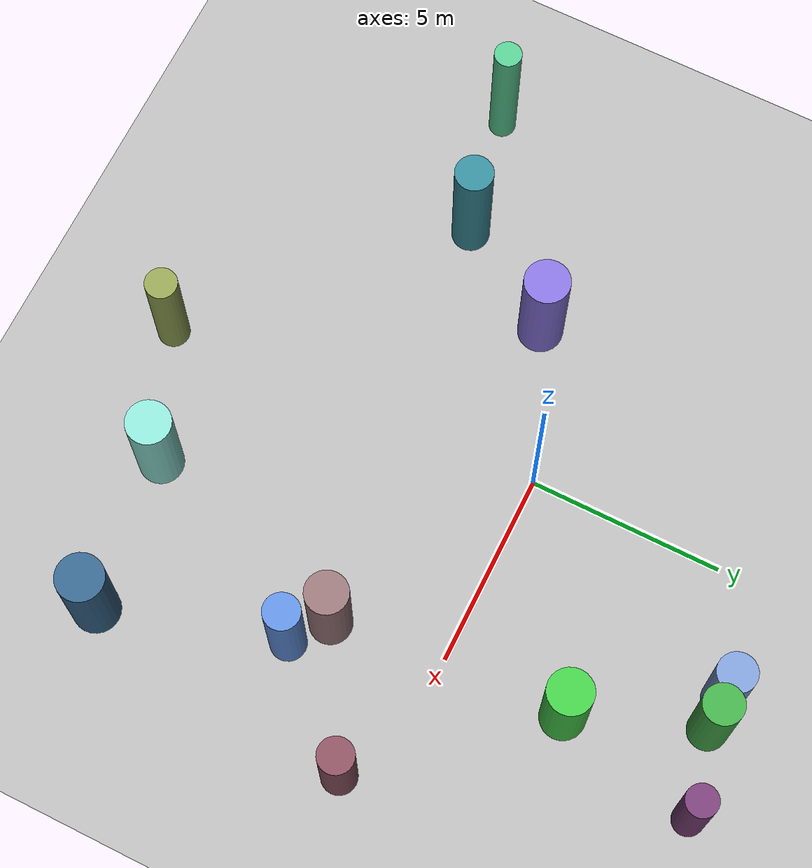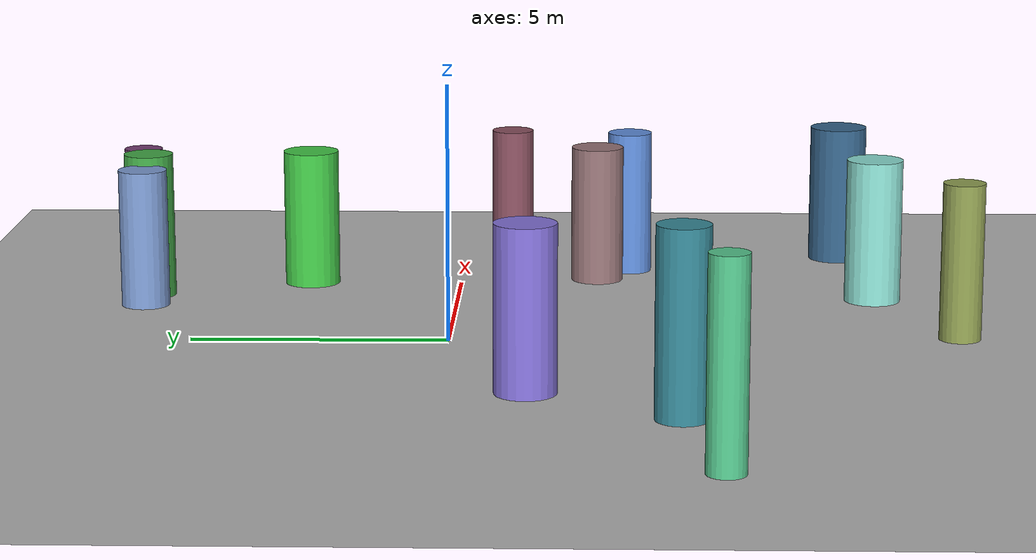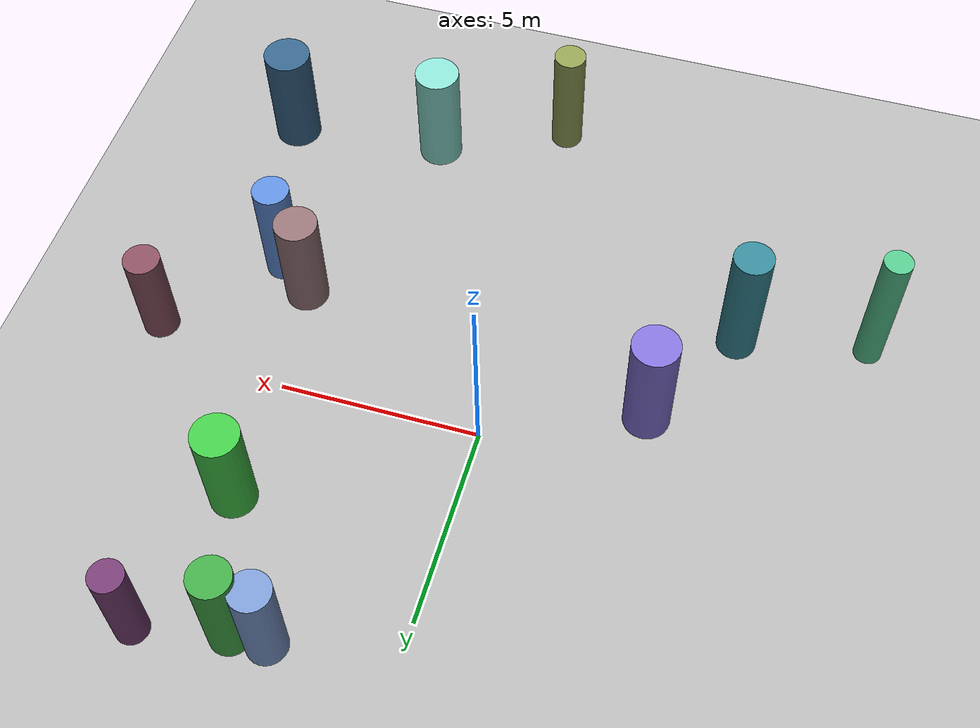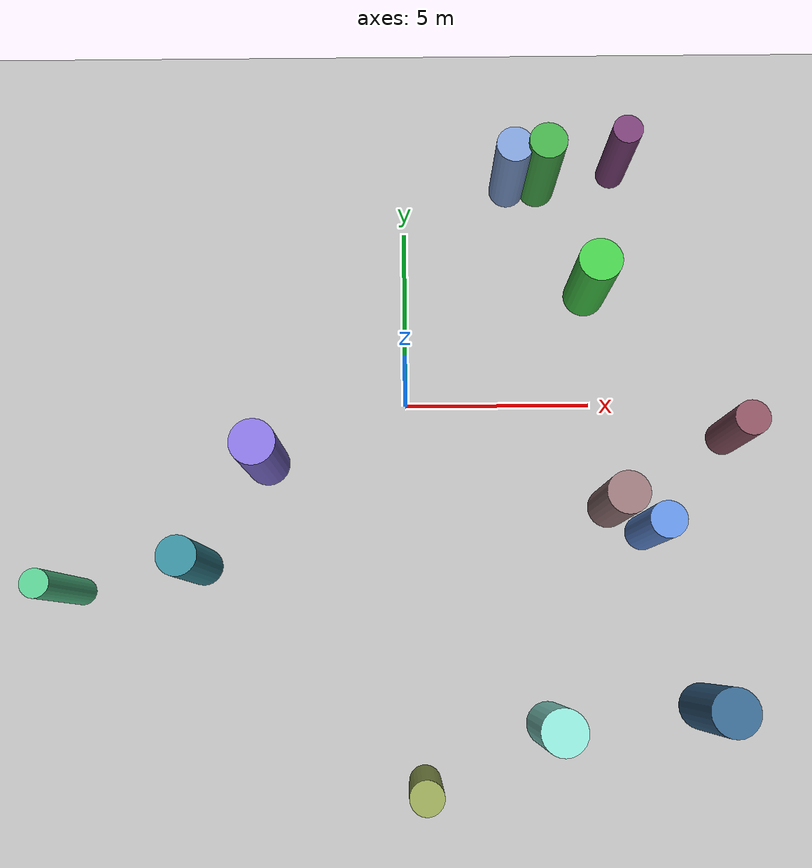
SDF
<sdf version="1.9">
 <world name="obstacle_avoidance">
  <physics type="ode">
   <max_step_size>0.004</max_step_size>
   <real_time_factor>1.0</real_time_factor>
   <real_time_update_rate>250</real_time_update_rate>
  </physics>
  <gravity>0 0 -9.8</gravity>
  <magnetic_field>6e-06 2.3e-05 -4.2e-05</magnetic_field>
  <atmosphere type="adiabatic"/>
  <scene>
   <grid>true</grid>
   <ambient>0.4 0.4 0.4 1</ambient>
   <background>0.7 0.7 0.7 1</background>
   <shadows>false</shadows>
  </scene>
  <plugin filename="gz-sim-physics-system" name="gz::sim::systems::Physics"/>
  <plugin filename="gz-sim-user-commands-system" name="gz::sim::systems::UserCommands"/>
  <plugin filename="gz-sim-scene-broadcaster-system" name="gz::sim::systems::SceneBroadcaster"/>
  <plugin filename="gz-sim-sensors-system" name="gz::sim::systems::Sensors">
   <render_engine>ogre2</render_engine>
  </plugin>
  <plugin filename="gz-sim-imu-system" name="gz::sim::systems::Imu"/>
  <plugin filename="gz-sim-air-pressure-system" name="gz::sim::systems::AirPressure"/>
  <plugin filename="gz-sim-magnetometer-system" name="gz::sim::systems::Magnetometer"/>
  <plugin filename="gz-sim-navsat-system" name="gz::sim::systems::NavSat"/>
  <light type="directional" name="sun">
   <cast_shadows>false</cast_shadows>
   <pose>0 0 10 0 0 0</pose>
   <diffuse>0.9 0.9 0.9 1</diffuse>
   <direction>-0.5 0.1 -0.9</direction>
  </light>
  <model name="ground_plane">
   <static>true</static>
   <link name="link">
    <collision name="c"><geometry><plane><normal>0 0 1</normal><size>200 200</size></plane></geometry></collision>
    <visual name="v">
     <geometry><plane><normal>0 0 1</normal><size>200 200</size></plane></geometry>
     <material><ambient>0.7 0.7 0.7 1</ambient><diffuse>0.7 0.7 0.7 1</diffuse></material>
    </visual>
   </link>
  </model>
  <spherical_coordinates>
   <surface_model>EARTH_WGS84</surface_model>
   <world_frame_orientation>ENU</world_frame_orientation>
   <latitude_deg>47.397971057728974</latitude_deg>
   <longitude_deg>8.546163739800146</longitude_deg>
   <elevation>0</elevation>
  </spherical_coordinates>
  <model name="cyl_1">
   <static>true</static>
   <pose>-8.61 -4.98 1.85 0 0 0</pose>
   <link name="l">
    <collision name="c">
     <geometry><cylinder><radius>0.35</radius><length>3.69</length></cylinder></geometry>
    </collision>
    <visual name="v">
     <geometry><cylinder><radius>0.35</radius><length>3.69</length></cylinder></geometry>
     <material><ambient>0.33 0.77 0.55 1</ambient><diffuse>0.33 0.77 0.55 1</diffuse></material>
    </visual>
   </link>
  </model>
  <model name="cyl_2">
   <static>true</static>
   <pose>7.63 -8.08 1.45 0 0 0</pose>
   <link name="l">
    <collision name="c">
     <geometry><cylinder><radius>0.60</radius><length>2.90</length></cylinder></geometry>
    </collision>
    <visual name="v">
     <geometry><cylinder><radius>0.60</radius><length>2.90</length></cylinder></geometry>
     <material><ambient>0.21 0.39 0.54 1</ambient><diffuse>0.21 0.39 0.54 1</diffuse></material>
    </visual>
   </link>
  </model>
  <model name="cyl_3">
   <static>true</static>
   <pose>-5.41 -4.35 1.74 0 0 0</pose>
   <link name="l">
    <collision name="c">
     <geometry><cylinder><radius>0.49</radius><length>3.47</length></cylinder></geometry>
    </collision>
    <visual name="v">
     <geometry><cylinder><radius>0.49</radius><length>3.47</length></cylinder></geometry>
     <material><ambient>0.21 0.53 0.59 1</ambient><diffuse>0.21 0.53 0.59 1</diffuse></material>
    </visual>
   </link>
  </model>
  <model name="cyl_4">
   <static>true</static>
   <pose>5.00 3.14 1.40 0 0 0</pose>
   <link name="l">
    <collision name="c">
     <geometry><cylinder><radius>0.57</radius><length>2.81</length></cylinder></geometry>
    </collision>
    <visual name="v">
     <geometry><cylinder><radius>0.57</radius><length>2.81</length></cylinder></geometry>
     <material><ambient>0.26 0.78 0.28 1</ambient><diffuse>0.26 0.78 0.28 1</diffuse></material>
    </visual>
   </link>
  </model>
  <model name="cyl_5">
   <static>true</static>
   <pose>6.30 -3.54 1.50 0 0 0</pose>
   <link name="l">
    <collision name="c">
     <geometry><cylinder><radius>0.46</radius><length>2.99</length></cylinder></geometry>
    </collision>
    <visual name="v">
     <geometry><cylinder><radius>0.46</radius><length>2.99</length></cylinder></geometry>
     <material><ambient>0.37 0.55 0.85 1</ambient><diffuse>0.37 0.55 0.85 1</diffuse></material>
    </visual>
   </link>
  </model>
  <model name="cyl_6">
   <static>true</static>
   <pose>3.62 -8.49 1.46 0 0 0</pose>
   <link name="l">
    <collision name="c">
     <geometry><cylinder><radius>0.57</radius><length>2.93</length></cylinder></geometry>
    </collision>
    <visual name="v">
     <geometry><cylinder><radius>0.57</radius><length>2.93</length></cylinder></geometry>
     <material><ambient>0.54 0.86 0.81 1</ambient><diffuse>0.54 0.86 0.81 1</diffuse></material>
    </visual>
   </link>
  </model>
  <model name="cyl_7">
   <static>true</static>
   <pose>8.63 -0.97 1.31 0 0 0</pose>
   <link name="l">
    <collision name="c">
     <geometry><cylinder><radius>0.45</radius><length>2.63</length></cylinder></geometry>
    </collision>
    <visual name="v">
     <geometry><cylinder><radius>0.45</radius><length>2.63</length></cylinder></geometry>
     <material><ambient>0.53 0.31 0.37 1</ambient><diffuse>0.53 0.31 0.37 1</diffuse></material>
    </visual>
   </link>
  </model>
  <model name="cyl_8">
   <static>true</static>
   <pose>5.41 -2.85 1.42 0 0 0</pose>
   <link name="l">
    <collision name="c">
     <geometry><cylinder><radius>0.54</radius><length>2.84</length></cylinder></geometry>
    </collision>
    <visual name="v">
     <geometry><cylinder><radius>0.54</radius><length>2.84</length></cylinder></geometry>
     <material><ambient>0.58 0.45 0.46 1</ambient><diffuse>0.58 0.45 0.46 1</diffuse></material>
    </visual>
   </link>
  </model>
  <model name="cyl_9">
   <static>true</static>
   <pose>0.41 -9.89 1.54 0 0 0</pose>
   <link name="l">
    <collision name="c">
     <geometry><cylinder><radius>0.41</radius><length>3.08</length></cylinder></geometry>
    </collision>
    <visual name="v">
     <geometry><cylinder><radius>0.41</radius><length>3.08</length></cylinder></geometry>
     <material><ambient>0.56 0.62 0.32 1</ambient><diffuse>0.56 0.62 0.32 1</diffuse></material>
    </visual>
   </link>
  </model>
  <model name="cyl_10">
   <static>true</static>
   <pose>5.90 6.80 1.34 0 0 0</pose>
   <link name="l">
    <collision name="c">
     <geometry><cylinder><radius>0.40</radius><length>2.67</length></cylinder></geometry>
    </collision>
    <visual name="v">
     <geometry><cylinder><radius>0.40</radius><length>2.67</length></cylinder></geometry>
     <material><ambient>0.46 0.24 0.45 1</ambient><diffuse>0.46 0.24 0.45 1</diffuse></material>
    </visual>
   </link>
  </model>
  <model name="cyl_11">
   <static>true</static>
   <pose>3.76 6.35 1.48 0 0 0</pose>
   <link name="l">
    <collision name="c">
     <geometry><cylinder><radius>0.50</radius><length>2.95</length></cylinder></geometry>
    </collision>
    <visual name="v">
     <geometry><cylinder><radius>0.50</radius><length>2.95</length></cylinder></geometry>
     <material><ambient>0.26 0.66 0.28 1</ambient><diffuse>0.26 0.66 0.28 1</diffuse></material>
    </visual>
   </link>
  </model>
  <model name="cyl_12">
   <static>true</static>
   <pose>2.91 6.34 1.39 0 0 0</pose>
   <link name="l">
    <collision name="c">
     <geometry><cylinder><radius>0.49</radius><length>2.79</length></cylinder></geometry>
    </collision>
    <visual name="v">
     <geometry><cylinder><radius>0.49</radius><length>2.79</length></cylinder></geometry>
     <material><ambient>0.48 0.60 0.81 1</ambient><diffuse>0.48 0.60 0.81 1</diffuse></material>
    </visual>
   </link>
  </model>
  <model name="cyl_13">
   <static>true</static>
   <pose>-3.75 -1.58 1.57 0 0 0</pose>
   <link name="l">
    <collision name="c">
     <geometry><cylinder><radius>0.58</radius><length>3.13</length></cylinder></geometry>
    </collision>
    <visual name="v">
     <geometry><cylinder><radius>0.58</radius><length>3.13</length></cylinder></geometry>
     <material><ambient>0.51 0.44 0.84 1</ambient><diffuse>0.51 0.44 0.84 1</diffuse></material>
    </visual>
   </link>
  </model>
 </world>
</sdf>
